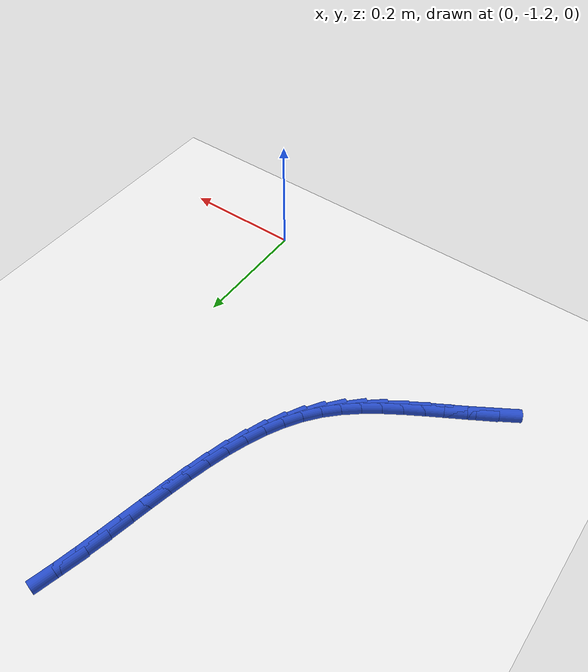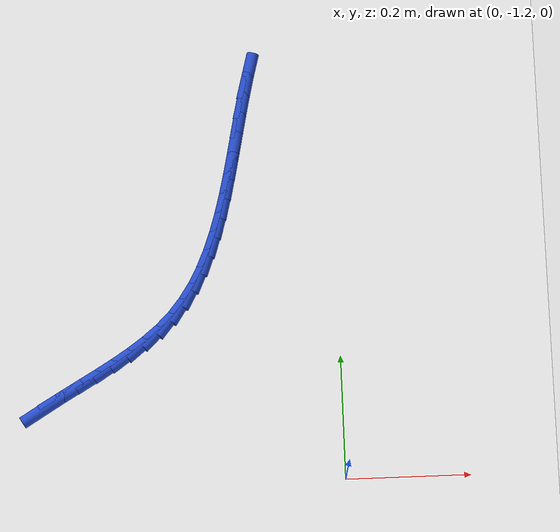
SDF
<sdf version="1.6">
 <world name="default">
  <model name="ground_plane">
   <static>1</static>
   <link name="link">
    <collision name="collision">
     <geometry><plane><normal>0 0 1</normal><size>100 100</size></plane></geometry>
     <surface><friction><ode><mu>100</mu><mu2>50</mu2></ode></friction></surface>
    </collision>
    <visual name="visual">
     <cast_shadows>0</cast_shadows>
     <geometry><plane><normal>0 0 1</normal><size>100 100</size></plane></geometry>
     <material>
      <script><uri>file://media/materials/scripts/gazebo.material</uri><name>Gazebo/WhiteGlow</name></script>
     </material>
    </visual>
   </link>
  </model>
  <model name="line">
   <link name="link_222">
    <pose>-0.4765941746848762 -1.0726882359235315 0.01 0 1.57 0.5532801768949179</pose>
    <collision name="collision">
     <geometry><cylinder><radius>0.01</radius><length>0.08</length></cylinder></geometry>
    </collision>
    <visual name="visual">
     <material>
      <script><name>Gazebo/Blue</name><uri>file://media/materials/scripts/gazebo.material</uri></script>
     </material>
     <geometry><cylinder><radius>0.01</radius><length>0.08</length></cylinder></geometry>
    </visual>
   </link>
   <link name="link_223">
    <pose>-0.44778883792374513 -1.054897267415364 0.01 0 1.57 0.5346705509638287</pose>
    <collision name="collision">
     <geometry><cylinder><radius>0.01</radius><length>0.08</length></cylinder></geometry>
    </collision>
    <visual name="visual">
     <material>
      <script><name>Gazebo/Blue</name><uri>file://media/materials/scripts/gazebo.material</uri></script>
     </material>
     <geometry><cylinder><radius>0.01</radius><length>0.08</length></cylinder></geometry>
    </visual>
   </link>
   <link name="link_224">
    <pose>-0.4189762516904561 -1.0378342170134032 0.01 0 1.57 0.5318520907140192</pose>
    <collision name="collision">
     <geometry><cylinder><radius>0.01</radius><length>0.08</length></cylinder></geometry>
    </collision>
    <visual name="visual">
     <material>
      <script><name>Gazebo/Blue</name><uri>file://media/materials/scripts/gazebo.material</uri></script>
     </material>
     <geometry><cylinder><radius>0.01</radius><length>0.08</length></cylinder></geometry>
    </visual>
   </link>
   <link name="link_225">
    <pose>-0.3905266029558963 -1.0210942266463594 0.01 0 1.57 0.5454941958778793</pose>
    <collision name="collision">
     <geometry><cylinder><radius>0.01</radius><length>0.08</length></cylinder></geometry>
    </collision>
    <visual name="visual">
     <material>
      <script><name>Gazebo/Blue</name><uri>file://media/materials/scripts/gazebo.material</uri></script>
     </material>
     <geometry><cylinder><radius>0.01</radius><length>0.08</length></cylinder></geometry>
    </visual>
   </link>
   <link name="link_226">
    <pose>-0.36281007869095283 -1.0042724382429438 0.01 0 1.57 0.5766355272836321</pose>
    <collision name="collision">
     <geometry><cylinder><radius>0.01</radius><length>0.08</length></cylinder></geometry>
    </collision>
    <visual name="visual">
     <material>
      <script><name>Gazebo/Blue</name><uri>file://media/materials/scripts/gazebo.material</uri></script>
     </material>
     <geometry><cylinder><radius>0.01</radius><length>0.08</length></cylinder></geometry>
    </visual>
   </link>
   <link name="link_227">
    <pose>-0.3361968658665129 -0.986963993731867 0.01 0 1.57 0.6266212359160066</pose>
    <collision name="collision">
     <geometry><cylinder><radius>0.01</radius><length>0.08</length></cylinder></geometry>
    </collision>
    <visual name="visual">
     <material>
      <script><name>Gazebo/Blue</name><uri>file://media/materials/scripts/gazebo.material</uri></script>
     </material>
     <geometry><cylinder><radius>0.01</radius><length>0.08</length></cylinder></geometry>
    </visual>
   </link>
   <link name="link_228">
    <pose>-0.3110571514534637 -0.9687640350418402 0.01 0 1.57 0.696836583171152</pose>
    <collision name="collision">
     <geometry><cylinder><radius>0.01</radius><length>0.08</length></cylinder></geometry>
    </collision>
    <visual name="visual">
     <material>
      <script><name>Gazebo/Blue</name><uri>file://media/materials/scripts/gazebo.material</uri></script>
     </material>
     <geometry><cylinder><radius>0.01</radius><length>0.08</length></cylinder></geometry>
    </visual>
   </link>
   <link name="link_229">
    <pose>-0.2877611224226921 -0.9492677041015738 0.01 0 1.57 0.7881277061477173</pose>
    <collision name="collision">
     <geometry><cylinder><radius>0.01</radius><length>0.08</length></cylinder></geometry>
    </collision>
    <visual name="visual">
     <material>
      <script><name>Gazebo/Blue</name><uri>file://media/materials/scripts/gazebo.material</uri></script>
     </material>
     <geometry><cylinder><radius>0.01</radius><length>0.08</length></cylinder></geometry>
    </visual>
   </link>
   <link name="link_230">
    <pose>-0.2666789657450864 -0.9280701428397795 0.01 0 1.57 0.8955476443049429</pose>
    <collision name="collision">
     <geometry><cylinder><radius>0.01</radius><length>0.08</length></cylinder></geometry>
    </collision>
    <visual name="visual">
     <material>
      <script><name>Gazebo/Blue</name><uri>file://media/materials/scripts/gazebo.material</uri></script>
     </material>
     <geometry><cylinder><radius>0.01</radius><length>0.08</length></cylinder></geometry>
    </visual>
   </link>
   <link name="link_231">
    <pose>-0.24808784849990878 -0.9048554195564379 0.01 0 1.57 0.9972816604214314</pose>
    <collision name="collision">
     <geometry><cylinder><radius>0.01</radius><length>0.08</length></cylinder></geometry>
    </collision>
    <visual name="visual">
     <material>
      <script><name>Gazebo/Blue</name><uri>file://media/materials/scripts/gazebo.material</uri></script>
     </material>
     <geometry><cylinder><radius>0.01</radius><length>0.08</length></cylinder></geometry>
    </visual>
   </link>
   <link name="link_232">
    <pose>-0.2318449068147856 -0.8797091492282457 0.01 0 1.57 1.0860465196255893</pose>
    <collision name="collision">
     <geometry><cylinder><radius>0.01</radius><length>0.08</length></cylinder></geometry>
    </collision>
    <visual name="visual">
     <material>
      <script><name>Gazebo/Blue</name><uri>file://media/materials/scripts/gazebo.material</uri></script>
     </material>
     <geometry><cylinder><radius>0.01</radius><length>0.08</length></cylinder></geometry>
    </visual>
   </link>
   <link name="link_233">
    <pose>-0.2176887754987086 -0.8528302332706689 0.01 0 1.57 1.1613391669440711</pose>
    <collision name="collision">
     <geometry><cylinder><radius>0.01</radius><length>0.08</length></cylinder></geometry>
    </collision>
    <visual name="visual">
     <material>
      <script><name>Gazebo/Blue</name><uri>file://media/materials/scripts/gazebo.material</uri></script>
     </material>
     <geometry><cylinder><radius>0.01</radius><length>0.08</length></cylinder></geometry>
    </visual>
   </link>
   <link name="link_234">
    <pose>-0.20535808243598588 -0.8244175797191235 0.01 0 1.57 1.2235296512154352</pose>
    <collision name="collision">
     <geometry><cylinder><radius>0.01</radius><length>0.08</length></cylinder></geometry>
    </collision>
    <visual name="visual">
     <material>
      <script><name>Gazebo/Blue</name><uri>file://media/materials/scripts/gazebo.material</uri></script>
     </material>
     <geometry><cylinder><radius>0.01</radius><length>0.08</length></cylinder></geometry>
    </visual>
   </link>
   <link name="link_235">
    <pose>-0.1945914555109255 -0.794670096609026 0.01 0 1.57 1.2734411348704437</pose>
    <collision name="collision">
     <geometry><cylinder><radius>0.01</radius><length>0.08</length></cylinder></geometry>
    </collision>
    <visual name="visual">
     <material>
      <script><name>Gazebo/Blue</name><uri>file://media/materials/scripts/gazebo.material</uri></script>
     </material>
     <geometry><cylinder><radius>0.01</radius><length>0.08</length></cylinder></geometry>
    </visual>
   </link>
   <link name="link_236">
    <pose>-0.18512752260783513 -0.7637866919757912 0.01 0 1.57 1.3120383822498471</pose>
    <collision name="collision">
     <geometry><cylinder><radius>0.01</radius><length>0.08</length></cylinder></geometry>
    </collision>
    <visual name="visual">
     <material>
      <script><name>Gazebo/Blue</name><uri>file://media/materials/scripts/gazebo.material</uri></script>
     </material>
     <geometry><cylinder><radius>0.01</radius><length>0.08</length></cylinder></geometry>
    </visual>
   </link>
   <link name="link_237">
    <pose>-0.1767049116110234 -0.7319662738548373 0.01 0 1.57 1.340234459424218</pose>
    <collision name="collision">
     <geometry><cylinder><radius>0.01</radius><length>0.08</length></cylinder></geometry>
    </collision>
    <visual name="visual">
     <material>
      <script><name>Gazebo/Blue</name><uri>file://media/materials/scripts/gazebo.material</uri></script>
     </material>
     <geometry><cylinder><radius>0.01</radius><length>0.08</length></cylinder></geometry>
    </visual>
   </link>
   <link name="link_238">
    <pose>-0.16906225040479794 -0.6994077502815786 0.01 0 1.57 1.3587870261906418</pose>
    <collision name="collision">
     <geometry><cylinder><radius>0.01</radius><length>0.08</length></cylinder></geometry>
    </collision>
    <visual name="visual">
     <material>
      <script><name>Gazebo/Blue</name><uri>file://media/materials/scripts/gazebo.material</uri></script>
     </material>
     <geometry><cylinder><radius>0.01</radius><length>0.08</length></cylinder></geometry>
    </visual>
   </link>
   <link name="link_239">
    <pose>-0.16193816687346685 -0.6663100292914322 0.01 0 1.57 1.3682508911800824</pose>
    <collision name="collision">
     <geometry><cylinder><radius>0.01</radius><length>0.08</length></cylinder></geometry>
    </collision>
    <visual name="visual">
     <material>
      <script><name>Gazebo/Blue</name><uri>file://media/materials/scripts/gazebo.material</uri></script>
     </material>
     <geometry><cylinder><radius>0.01</radius><length>0.08</length></cylinder></geometry>
    </visual>
   </link>
   <link name="link_240">
    <pose>-0.1550712889013382 -0.6328720189198137 0.01 0 1.57 1.3689615914934092</pose>
    <collision name="collision">
     <geometry><cylinder><radius>0.01</radius><length>0.08</length></cylinder></geometry>
    </collision>
    <visual name="visual">
     <material>
      <script><name>Gazebo/Blue</name><uri>file://media/materials/scripts/gazebo.material</uri></script>
     </material>
     <geometry><cylinder><radius>0.01</radius><length>0.08</length></cylinder></geometry>
    </visual>
   </link>
   <link name="link_241">
    <pose>-0.1482002443727199 -0.5992926272021389 0.01 0 1.57 1.3610345785907074</pose>
    <collision name="collision">
     <geometry><cylinder><radius>0.01</radius><length>0.08</length></cylinder></geometry>
    </collision>
    <visual name="visual">
     <material>
      <script><name>Gazebo/Blue</name><uri>file://media/materials/scripts/gazebo.material</uri></script>
     </material>
     <geometry><cylinder><radius>0.01</radius><length>0.08</length></cylinder></geometry>
    </visual>
   </link>
   <link name="link_242">
    <pose>-0.14106366117192004 -0.5657707621738243 0.01 0 1.57 1.3443726514227945</pose>
    <collision name="collision">
     <geometry><cylinder><radius>0.01</radius><length>0.08</length></cylinder></geometry>
    </collision>
    <visual name="visual">
     <material>
      <script><name>Gazebo/Blue</name><uri>file://media/materials/scripts/gazebo.material</uri></script>
     </material>
     <geometry><cylinder><radius>0.01</radius><length>0.08</length></cylinder></geometry>
    </visual>
   </link>
   <link name="link_243">
    <pose>-0.1334001671832466 -0.5325053318702856 0.01 0 1.57 1.3186805177352146</pose>
    <collision name="collision">
     <geometry><cylinder><radius>0.01</radius><length>0.08</length></cylinder></geometry>
    </collision>
    <visual name="visual">
     <material>
      <script><name>Gazebo/Blue</name><uri>file://media/materials/scripts/gazebo.material</uri></script>
     </material>
     <geometry><cylinder><radius>0.01</radius><length>0.08</length></cylinder></geometry>
    </visual>
   </link>
  </model>
 </world>
</sdf>
